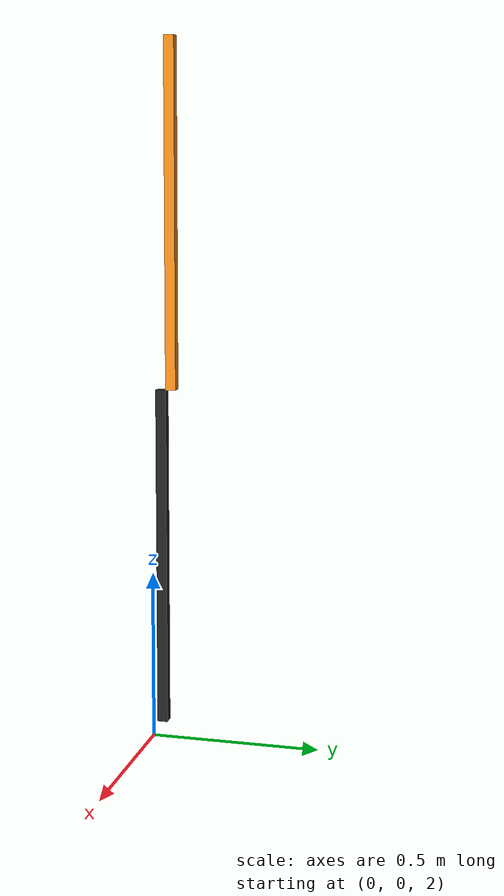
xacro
<?xml version="1.0"?>
<!-- Revolute-Revolute Manipulator -->
<robot name="rrbot" xmlns:xacro="http://www.ros.org/wiki/xacro">

  <!-- Constants for robot dimensions -->
  <xacro:property name="PI" value="3.1415926535897931"/>
  <xacro:property name="mass" value="1" /> <!-- arbitrary value for mass -->
  <xacro:property name="width" value="0.03" /> <!-- Square dimensions (widthxwidth) of beams -->
  <xacro:property name="height1" value="2.05" /> <!-- Link 1 -->
  <xacro:property name="height2" value="1" /> <!-- Link 2 -->
  <xacro:property name="height3" value="1" /> <!-- Link 3 -->
  <xacro:property name="camera_link" value="0.05" /> <!-- Size of square 'camera' box -->
  <xacro:property name="axel_offset" value="0.0" /> <!-- Space btw top of beam and the each joint -->

  <!-- Import all Gazebo-customization elements, including Gazebo colors -->
  <xacro:include filename="$(find rrbot_description)/urdf/rrbot.gazebo" />
  <!-- Import Rviz colors -->
  <xacro:include filename="$(find rrbot_description)/urdf/materials.xacro" />

  <!-- Used for fixing robot to Gazebo 'base_link' -->
  <link name="world"/>

  <joint name="fixed" type="fixed">
    <parent link="world"/>
    <child link="link1"/>
  </joint>

  <!-- Base Link -->
  <link name="link1">
    <collision>
      <origin xyz="0 0 ${height1/2}" rpy="0 0 0"/>
      <geometry>
	<box size="${width} ${width} ${height1}"/>
      </geometry>
    </collision>

    <inertial>
      <origin xyz="0 0 0" rpy="0 0 0"/>
      <mass value="${mass}"/>
      <inertia
	  ixx="${mass / 12.0 * (width*width + height1*height1)}" ixy="0.0" ixz="0.0"
	  iyy="${mass / 12.0 * (height1*height1 + width*width)}" iyz="0.0"
	  izz="${mass / 12.0 * (width*width + width*width)}"/>
    </inertial>
  </link>

  <joint name="joint1" type="continuous">
    <parent link="link1"/>
    <child link="link2"/>
    <origin xyz="0 ${width} ${height1 - axel_offset}" rpy="0 0 0"/>
    <axis xyz="0 1 0"/>
    <limit effort="1000" lower="${-PI*2.0}" upper="${PI*2.0}" velocity="1"/>
    <dynamics damping="0.1"/>
  </joint>

  <!-- Middle Link -->
  <link name="link2">
    <collision>
      <origin xyz="0 0 ${height2/2 - axel_offset}" rpy="0 0 0"/>
      <geometry>
	<box size="${width} ${width} ${height2}"/>
      </geometry>
    </collision>

    <visual>
      <origin xyz="0 0 ${height2/2 - axel_offset}" rpy="0 0 0"/>
      <geometry>
	<box size="${width} ${width} ${height2}"/>
      </geometry>
      <material name="black"/>
    </visual>

    <inertial>
      <origin xyz="0 0 ${height2 - axel_offset}" rpy="0 0 0"/>
      <mass value="${mass}"/>
      <inertia
	  ixx="1" ixy="0.0" ixz="0.0"
	  iyy="1" iyz="0.0"
	  izz="0"/>
    </inertial>
  </link>

  <joint name="joint2" type="continuous">
    <parent link="link2"/>
    <child link="link3"/>
    <origin xyz="0 ${width} ${height2 - axel_offset*2}" rpy="0 0 0"/>
    <axis xyz="0 1 0"/>
    <limit effort="1000" lower="${-PI*2.0}" upper="${PI*2.0}" velocity="1"/>
    <dynamics damping="0.1"/>
  </joint>

  <!-- Top Link -->
  <link name="link3">
    <collision>
      <origin xyz="0 0 ${height3/2 - axel_offset}" rpy="0 0 0"/>
      <geometry>
	<box size="${width} ${width} ${height3}"/>
      </geometry>
    </collision>

    <visual>
      <origin xyz="0 0 ${height3/2 - axel_offset}" rpy="0 0 0"/>
      <geometry>
	<box size="${width} ${width} ${height3}"/>
      </geometry>
      <material name="orange"/>
    </visual>

    <inertial>
      <origin xyz="0 0 ${height3 - axel_offset}" rpy="0 0 0"/>
      <mass value="${mass}"/>
      <inertia
	  ixx="1" ixy="0.0" ixz="0.0"
	  iyy="1" iyz="0.0"
	  izz="0"/>
    </inertial>
  </link>

  <transmission name="tran1">
    <type>transmission_interface/SimpleTransmission</type>
    <joint name="joint1">
      <hardwareInterface>EffortJointInterface</hardwareInterface>
    </joint>
    <actuator name="motor1">
      <hardwareInterface>EffortJointInterface</hardwareInterface>
      <mechanicalReduction>1</mechanicalReduction>
    </actuator>
  </transmission>

  <transmission name="tran2">
    <type>transmission_interface/SimpleTransmission</type>
    <joint name="joint2">
      <hardwareInterface>EffortJointInterface</hardwareInterface>
    </joint>
    <actuator name="motor2">
      <hardwareInterface>EffortJointInterface</hardwareInterface>
      <mechanicalReduction>1</mechanicalReduction>
    </actuator>
  </transmission>

</robot>
